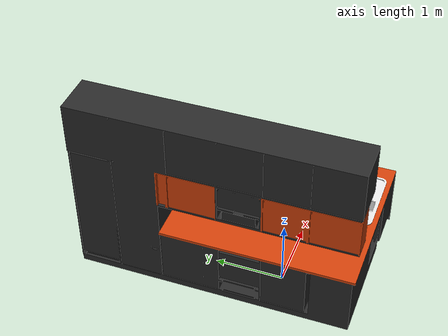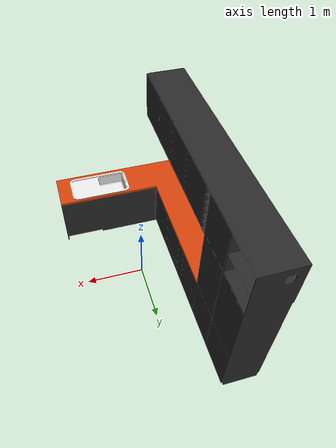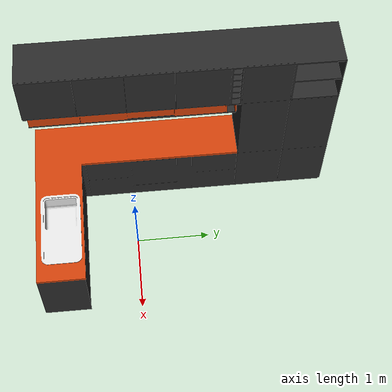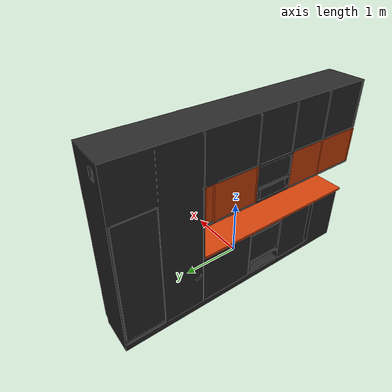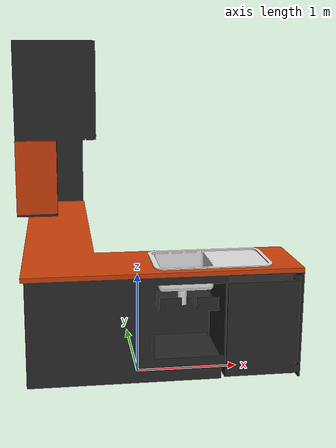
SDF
<?xml version="1.0" ?>
<sdf version="1.6">
  <model name="Kitchen">
    <pose>0 0 0.5 0 0 0</pose>
    <static>true</static>
    <link name="link">
      <collision name ="collision">
        <geometry>
          <mesh>
            <uri>model://kitchen/meshes/kitchen.dae</uri>
            <scale>1 1 1</scale>
          </mesh>
	</geometry>
      </collision>

      <visual name="visual">
        <geometry>
          <mesh>
            <uri>model://kitchen/meshes/kitchen.dae</uri>
            <scale>1 1 1</scale>
          </mesh>
        </geometry>
      </visual>
    </link>
  </model>
</sdf>
